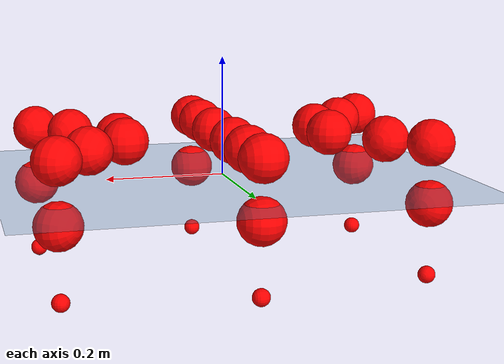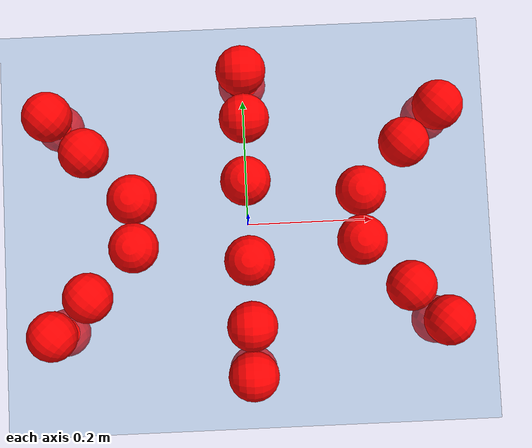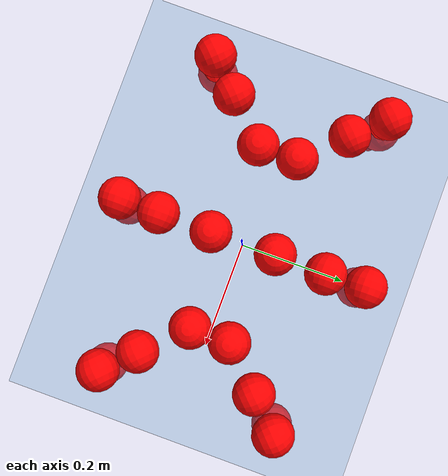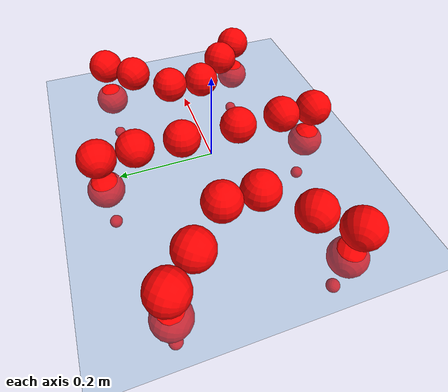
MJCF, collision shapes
<mujoco model="Golem">
  <compiler angle="radian" assetdir="assets" balanceinertia="true" inertiafromgeom="false"/>

  <option timestep="0.005" density="1.2" viscosity="2e-05"/>

  <size nkey="1"/>

  <visual>
    <quality shadowsize="8192"/>
    <map shadowclip="0.5"/>
  </visual>

  <default>
    <default class="/">
      <joint armature="0.01" damping="0.01" frictionloss="0.01"/>
      <geom contype="0" conaffinity="0" group="1" solref="-1000 -80"/>
      <site size="0.01 0.005 0.005" group="5"/>
      <general forcelimited="true" biastype="affine" gainprm="25" biasprm="0 -25 -0.5"/>
      <default class="visual">
        <geom type="mesh" group="2"/>
      </default>
      <default class="collision">
        <geom group="3"/>
      </default>
      <default class="foot">
        <geom size="0.01 0 0" condim="6" group="4" priority="1" solimp="0.015 1 0.01"/>
      </default>
      <default class="reward_collision_sphere">
        <geom group="5" rgba="1 0 0 1"/>
      </default>
    </default>
  </default>

  <asset>
    <texture type="skybox" colorspace="auto" name="//unnamed_texture_0" builtin="gradient" rgb1="0.95 0.95 0.95" rgb2="0.95 0.95 0.95" width="100" height="600"/>
    <texture type="2d" colorspace="auto" name="texplane" builtin="checker" rgb1="0.345 0.575 0.748" rgb2="0.345 0.575 0.748" markrgb="1 1 1" width="512" height="512"/>
    <material name="MatPlane" class="/" texture="texplane" texuniform="true" texrepeat="2 2" specular="0.9"/>
    <mesh name="body" class="/" file="body.stl" scale="0.001 0.001 0.001"/>
    <mesh name="coxa" class="/" file="coxa.stl" scale="0.001 0.001 0.001"/>
    <mesh name="femur" class="/" file="femur.stl" scale="0.001 0.001 0.001"/>
    <mesh name="tibia" class="/" file="tibia.stl" scale="0.001 0.001 0.001"/>
    <mesh name="tarsus" class="/" file="tarsus.stl" scale="0.001 0.001 0.001"/>
  </asset>

  <worldbody>
    <geom name="floor" class="/" size="100 100 0.125" type="plane" group="0" material="MatPlane"/>
    <light name="toplight_shadow" class="/" pos="0 0 5" dir="0.0990148 0.0990148 -0.990148" type="directional" ambient="0.04 0.04 0.04" diffuse="0.55 0.55 0.55" specular="0.12 0.12 0.12"/>
    <light name="toplight_fill" class="/" pos="0 0 5" dir="0.0990148 0.0990148 -0.990148" type="directional" castshadow="false" ambient="0.04 0.04 0.04" diffuse="0.3 0.3 0.3" specular="0.08 0.08 0.08"/>
    <body name="trunk" pos="-0.000597659 0.00238137 0.000718632" quat="1 0.000132963 -3.11671e-05 8.80261e-05">
      <inertial pos="0.000560973 0.000247863 -0.00528692" quat="0.999999 0.000255351 -0.00124205 -0.00036143" mass="3.55502" diaginertia="0.0180347 0.00207399 0.0135878"/>
      <joint name="//unnamed_joint_0" type="free"/>
      <geom name="//unnamed_geom_1" class="/" pos="0 0 0.0681376" quat="1 0 0 0" type="mesh" rgba="0.9 0.9 0.9 1" mesh="body"/>
      <site name="imu" class="/" pos="0.146625 -0.00528864 0.10689" size="0.00970498"/>
      <camera name="track" class="/" pos="0 -1.4506 0" quat="0.707107 0.707107 0 0" mode="trackcom"/>
      <camera name="ego_camera" class="/" pos="0.1458 0 0.106465" quat="-0.5 -0.5 0.5 0.5"/>
      <body name="coxa_RR" pos="-0.199515 -0.0588959 0.0710991" quat="0.382777 -0.000764222 0.000653011 -0.92384">
        <inertial pos="0.000289413 -0.00256482 0.00304926" quat="0.999999 0.00105772 -0.000473755 0.000298429" mass="0.18669" diaginertia="0.017699 0.00201773 0.0136414"/>
        <joint name="coxa_joint_RR" class="/" pos="0 0 0" axis="0.00485425 0.000278726 -0.999988" range="-3.10461 3.14105" armature="0.00985603" damping="0.0112296" frictionloss="0.00996763"/>
        <geom name="//unnamed_geom_2" class="/" type="mesh" rgba="0.2 0.2 0.2 1" mesh="coxa"/>
        <geom name="//unnamed_geom_3" class="reward_collision_sphere" size="0.0388199" pos="-0.0336462 0 0"/>
        <body name="femur_RR" pos="0.0692639 0.000553759 -0.00090114" quat="0.500771 -0.499924 0.499824 0.499481">
          <inertial pos="-0.00192566 -2.42899e-05 0.000981804" quat="1 -0.00042944 -0.000205505 -7.93845e-06" mass="0.18517" diaginertia="0.0180016 0.00204995 0.0139336"/>
          <joint name="femur_joint_RR" class="/" pos="0 0 0" axis="-0.00248235 0.00103278 -0.999996" stiffness="0.000595562" range="-3.16206 3.15075" armature="0.00901734" damping="0.00489556" frictionloss="0.00972337"/>
          <geom name="//unnamed_geom_4" class="/" type="mesh" rgba="0.9 0.9 0.9 1" mesh="femur"/>
          <geom name="//unnamed_geom_5" class="reward_collision_sphere" size="0.0388199"/>
          <body name="tibia_RR" pos="0.00124239 -0.0789387 0.000148878" quat="-5.39105e-05 1 0.000104512 0.000105617">
            <inertial pos="-0.000116727 0.000528697 -0.00105805" quat="0.999998 0.00116419 -0.000570219 0.00174415" mass="0.179467" diaginertia="0.0177388 0.00205995 0.0141754"/>
            <joint name="tibia_joint_RR" class="/" pos="0 0 0" axis="0.00657685 -0.0037026 0.999972" range="-3.13897 3.08714" armature="0.0101456" damping="0.0146353" frictionloss="0.00940066"/>
            <geom name="//unnamed_geom_6" class="/" type="mesh" rgba="0.2 0.2 0.2 1" mesh="tibia"/>
            <geom name="//unnamed_geom_7" class="reward_collision_sphere" size="0.0388199"/>
            <body name="tarsus_RR" pos="0.0985819 -0.00183221 -0.00103811" quat="1 -9.54229e-05 -1.95974e-05 -2.62497e-05">
              <inertial pos="0.070529 0.00314486 -0.0021414" quat="0.499987 0.500032 0.499988 0.499993" mass="0.189825" diaginertia="0.0181175 0.00212059 0.0141387"/>
              <joint name="tarsus_joint_RR" class="/" pos="0 0 0" axis="-0.0022825 -0.000352986 0.999997" range="-3.087 3.12897" armature="0.00933037" damping="0.0419698" frictionloss="0.0098178"/>
              <geom name="//unnamed_geom_8" class="/" type="mesh" rgba="0.9 0.9 0.9 1" mesh="tarsus"/>
              <geom name="foot_1" class="foot" size="0.00944737" pos="0.125613 0 0" quat="0 -0.707107 0 0.707107"/>
              <geom name="//unnamed_geom_10" class="reward_collision_sphere" size="0.0388199"/>
              <geom name="//unnamed_geom_11" class="reward_collision_sphere" size="0.0145575" pos="0.120566 0 0"/>
              <site name="foot_1" class="foot" pos="0.125613 0 0" quat="0 -0.707107 0 0.707107" size="0.00970498"/>
            </body>
          </body>
        </body>
      </body>
      <body name="coxa_RM" pos="0.000208735 -0.0956483 0.0667435" quat="0.707144 -9.13235e-05 -0.000170783 -0.707069">
        <inertial pos="0.000527827 0.000116358 -0.000682712" quat="0.999997 -0.000712085 -0.00196434 0.0015334" mass="0.177932" diaginertia="0.0175286 0.00196717 0.0135138"/>
        <joint name="coxa_joint_RM" class="/" pos="0 0 0" axis="-0.00279161 -0.000628948 -0.999996" range="-3.11944 3.15841" armature="0.00982539" damping="0.00648242" frictionloss="0.0084388"/>
        <geom name="//unnamed_geom_12" class="/" type="mesh" rgba="0.2 0.2 0.2 1" mesh="coxa"/>
        <geom name="//unnamed_geom_13" class="reward_collision_sphere" size="0.0388199" pos="-0.0336462 0 0"/>
        <body name="femur_RM" pos="0.0666057 8.05636e-05 0.00157812" quat="0.499817 -0.49973 0.500204 0.500248">
          <inertial pos="0.000281046 -0.000872895 0.00170257" quat="0.999986 -0.00416469 -0.00098353 0.00302096" mass="0.18228" diaginertia="0.0172206 0.00203007 0.013743"/>
          <joint name="femur_joint_RM" class="/" pos="0 0 0" axis="-0.00484891 -0.00336724 -0.999983" stiffness="5.91044e-05" range="-3.1602 3.13362" armature="0.00974862" damping="0" frictionloss="0.00943846"/>
          <geom name="//unnamed_geom_14" class="/" type="mesh" rgba="0.9 0.9 0.9 1" mesh="femur"/>
          <geom name="//unnamed_geom_15" class="reward_collision_sphere" size="0.0388199"/>
          <body name="tibia_RM" pos="0.00213146 -0.0753354 -0.0010517" quat="-0.00010955 1 9.99612e-05 -1.88812e-06">
            <inertial pos="-0.00261381 -0.00272006 -0.000776375" quat="0.999916 0.00845273 0.0020644 -0.00959394" mass="0.183068" diaginertia="0.017644 0.00200827 0.0132536"/>
            <joint name="tibia_joint_RM" class="/" pos="0 0 0" axis="-0.000334578 0.000492902 1" range="-3.12838 3.13871" armature="0.00978937" damping="0.0206353" frictionloss="0.0100069"/>
            <geom name="//unnamed_geom_16" class="/" type="mesh" rgba="0.2 0.2 0.2 1" mesh="tibia"/>
            <geom name="//unnamed_geom_17" class="reward_collision_sphere" size="0.0388199"/>
            <body name="tarsus_RM" pos="0.0971847 -0.000816289 -0.000510538" quat="1 2.39074e-05 0.000318335 -0.000294162">
              <inertial pos="0.0668792 0.00038133 0.000955946" quat="0.499978 0.500048 0.500082 0.499892" mass="0.185515" diaginertia="0.0178767 0.00205472 0.0138426"/>
              <joint name="tarsus_joint_RM" class="/" pos="0 0 0" axis="-0.00302882 0.00184379 0.999994" range="-3.13782 3.12639" armature="0.00842329" damping="0.000620487" frictionloss="0.00962698"/>
              <geom name="//unnamed_geom_18" class="/" type="mesh" rgba="0.9 0.9 0.9 1" mesh="tarsus"/>
              <geom name="foot_2" class="foot" size="0.00916337" pos="0.125613 0 0" quat="0 -0.707107 0 0.707107"/>
              <geom name="//unnamed_geom_20" class="reward_collision_sphere" size="0.0388199"/>
              <geom name="//unnamed_geom_21" class="reward_collision_sphere" size="0.0145575" pos="0.120566 0 0"/>
              <site name="foot_2" class="foot" pos="0.125613 0 0" quat="0 -0.707107 0 0.707107" size="0.00970498"/>
            </body>
          </body>
        </body>
      </body>
      <body name="coxa_RF" pos="0.198009 -0.0614723 0.067254" quat="0.923985 -0.000366079 0.000247292 -0.382428">
        <inertial pos="0.00238802 8.72312e-05 0.000405307" quat="0.999998 0.000596227 0.000639624 -0.00176342" mass="0.182209" diaginertia="0.0182529 0.00197697 0.0132432"/>
        <joint name="coxa_joint_RF" class="/" pos="0 0 0" axis="-0.00285461 -0.00395897 -0.999988" range="-3.15527 3.14234" armature="0.00967505" damping="0.00949823" frictionloss="0.00963607"/>
        <geom name="//unnamed_geom_22" class="/" type="mesh" rgba="0.2 0.2 0.2 1" mesh="coxa"/>
        <geom name="//unnamed_geom_23" class="reward_collision_sphere" size="0.0388199" pos="-0.0336462 0 0"/>
        <body name="femur_RF" pos="0.0685279 -0.00141288 -0.000671312" quat="0.500052 -0.499978 0.499994 0.499976">
          <inertial pos="-0.000241377 0.000751393 -0.00168667" quat="0.999987 -0.000523666 -0.000299752 0.005077" mass="0.180491" diaginertia="0.0178873 0.00208159 0.0135717"/>
          <joint name="femur_joint_RF" class="/" pos="0 0 0" axis="-0.000972391 -0.00129105 -0.999999" range="-3.09516 3.14306" armature="0.010346" damping="0" frictionloss="0.0093573"/>
          <geom name="//unnamed_geom_24" class="/" type="mesh" rgba="0.9 0.9 0.9 1" mesh="femur"/>
          <geom name="//unnamed_geom_25" class="reward_collision_sphere" size="0.0388199"/>
          <body name="tibia_RF" pos="0.0005356 -0.0775505 -0.000271951" quat="0.000128519 1 -1.02672e-05 -6.62039e-05">
            <inertial pos="-0.000849796 0.00140613 0.000723101" quat="0.999987 0.00432127 -0.00107673 -0.00241556" mass="0.181894" diaginertia="0.0182472 0.00198298 0.013934"/>
            <joint name="tibia_joint_RF" class="/" pos="0 0 0" axis="-0.00282849 0.00126616 0.999995" range="-3.13896 3.15828" armature="0.00954739" damping="0.00901585" frictionloss="0.00877322"/>
            <geom name="//unnamed_geom_26" class="/" type="mesh" rgba="0.2 0.2 0.2 1" mesh="tibia"/>
            <geom name="//unnamed_geom_27" class="reward_collision_sphere" size="0.0388199"/>
            <body name="tarsus_RF" pos="0.0980581 0.00168954 0.0016941" quat="0.999999 -0.000398063 -0.00121599 0.000148068">
              <inertial pos="0.0661444 -0.00248534 0.0010154" quat="0.495308 0.492337 0.508844 0.503341" mass="0.17746" diaginertia="0.0181778 0.00193024 0.0136265"/>
              <joint name="tarsus_joint_RF" class="/" pos="0 0 0" axis="0.0034977 0.0084485 0.999958" range="-3.08951 3.13895" armature="0.0108993" damping="0.00302021" frictionloss="0.00970825"/>
              <geom name="//unnamed_geom_28" class="/" type="mesh" rgba="0.9 0.9 0.9 1" mesh="tarsus"/>
              <geom name="foot_3" class="foot" size="0.0101065" pos="0.125613 0 0" quat="0 -0.707107 0 0.707107"/>
              <geom name="//unnamed_geom_30" class="reward_collision_sphere" size="0.0388199"/>
              <geom name="//unnamed_geom_31" class="reward_collision_sphere" size="0.0145575" pos="0.120566 0 0"/>
              <site name="foot_3" class="foot" pos="0.125613 0 0" quat="0 -0.707107 0 0.707107" size="0.00970498"/>
            </body>
          </body>
        </body>
      </body>
      <body name="coxa_LR" pos="-0.199933 0.0629752 0.070341" quat="0.382932 -0.00020434 -0.000211036 0.923776">
        <inertial pos="0.00115897 -0.00287001 -0.000408129" quat="0.999956 0.00171216 0.00359088 -0.00852589" mass="0.175812" diaginertia="0.017039 0.00200331 0.0133142"/>
        <joint name="coxa_joint_LR" class="/" pos="0 0 0" axis="0.0026639 -0.00329143 -0.999991" range="-3.13483 3.18916" armature="0.00852516" damping="0.00876352" frictionloss="0.0100022"/>
        <geom name="//unnamed_geom_32" class="/" type="mesh" rgba="0.2 0.2 0.2 1" mesh="coxa"/>
        <geom name="//unnamed_geom_33" class="reward_collision_sphere" size="0.0388199" pos="-0.0336462 0 0"/>
        <body name="femur_LR" pos="0.0703668 -0.0021801 -0.00218353" quat="0.49988 -0.499554 0.500593 0.499972">
          <inertial pos="-0.00087287 -0.000611327 -0.00125736" quat="0.99992 0.00126742 -0.00444483 0.011769" mass="0.182756" diaginertia="0.0179951 0.00202082 0.0142399"/>
          <joint name="femur_joint_LR" class="/" pos="0 0 0" axis="6.82555e-05 -0.00196449 0.999998" range="-3.0875 3.1011" armature="0.00998051" damping="0" frictionloss="0.00980073"/>
          <geom name="//unnamed_geom_34" class="/" type="mesh" rgba="0.9 0.9 0.9 1" mesh="femur"/>
          <geom name="//unnamed_geom_35" class="reward_collision_sphere" size="0.0388199"/>
          <body name="tibia_LR" pos="-0.000958321 -0.0800712 -0.00280917" quat="2.00258e-05 1 -0.000106307 8.38032e-05">
            <inertial pos="6.93907e-05 -0.00228493 0.00177553" quat="0.999994 -9.23224e-05 -0.00331089 -0.000868514" mass="0.183519" diaginertia="0.0180963 0.00201319 0.0137522"/>
            <joint name="tibia_joint_LR" class="/" pos="0 0 0" axis="8.81268e-05 -0.000136235 -1" range="-3.17819 3.14886" armature="0.00942395" damping="0" frictionloss="0.0101279"/>
            <geom name="//unnamed_geom_36" class="/" type="mesh" rgba="0.2 0.2 0.2 1" mesh="tibia"/>
            <geom name="//unnamed_geom_37" class="reward_collision_sphere" size="0.0388199"/>
            <body name="tarsus_LR" pos="0.100874 0.000408506 0.000149385" quat="0.999999 0.000520688 -0.000746196 0.000591163">
              <inertial pos="0.0701731 0.000558532 -0.000190702" quat="0.49688 0.501378 0.498211 0.503503" mass="0.185414" diaginertia="0.0176126 0.00200231 0.0135521"/>
              <joint name="tarsus_joint_LR" class="/" pos="0 0 0" axis="0.000974725 -0.00148292 -0.999998" range="-3.18417 3.14004" armature="0.0096972" damping="0.0278147" frictionloss="0.00855907"/>
              <geom name="//unnamed_geom_38" class="/" type="mesh" rgba="0.9 0.9 0.9 1" mesh="tarsus"/>
              <geom name="foot_4" class="foot" size="0.00949467" pos="0.125613 0 0" quat="0.707107 0 -0.707107 0"/>
              <geom name="//unnamed_geom_40" class="reward_collision_sphere" size="0.0388199"/>
              <geom name="//unnamed_geom_41" class="reward_collision_sphere" size="0.0145575" pos="0.120566 0 0"/>
              <site name="foot_4" class="foot" pos="0.125613 0 0" quat="0.707107 0 -0.707107 0" size="0.00970498"/>
            </body>
          </body>
        </body>
      </body>
      <body name="coxa_LM" pos="-0.000712799 0.0942737 0.0679076" quat="0.7071 5.00637e-05 5.17239e-05 0.707114">
        <inertial pos="-0.00164971 0.000927863 -0.000982811" quat="0.999999 0.00117295 0.000213314 0.000169344" mass="0.182617" diaginertia="0.0172853 0.00194426 0.014102"/>
        <joint name="coxa_joint_LM" class="/" pos="0 0 0" axis="0.00377331 -0.00295971 -0.999989" stiffness="0.00104874" range="-3.13889 3.13716" armature="0.0109364" damping="0.00127191" frictionloss="0.00920676"/>
        <geom name="//unnamed_geom_42" class="/" type="mesh" rgba="0.2 0.2 0.2 1" mesh="coxa"/>
        <geom name="//unnamed_geom_43" class="reward_collision_sphere" size="0.0388199" pos="-0.0336462 0 0"/>
        <body name="femur_LM" pos="0.0626373 -0.00192354 0.0020152" quat="0.499962 -0.499957 0.500193 0.499888">
          <inertial pos="0.0019199 -0.00013973 0.00229448" quat="1 -0.000558722 6.74306e-05 -0.000497815" mass="0.182418" diaginertia="0.0176914 0.0020081 0.0137611"/>
          <joint name="femur_joint_LM" class="/" pos="0 0 0" axis="-0.00639561 -0.000183164 0.99998" range="-3.14509 3.10369" armature="0.00959338" damping="0.00207769" frictionloss="0.0102862"/>
          <geom name="//unnamed_geom_44" class="/" type="mesh" rgba="0.9 0.9 0.9 1" mesh="femur"/>
          <geom name="//unnamed_geom_45" class="reward_collision_sphere" size="0.0388199"/>
          <body name="tibia_LM" pos="0.00119058 -0.075365 0.00214113" quat="3.0758e-05 1 -0.000101047 -0.000127246">
            <inertial pos="-0.00049727 -0.00271806 0.00266216" quat="0.999915 0.00901446 0.00700309 0.00631211" mass="0.177866" diaginertia="0.0178505 0.00196944 0.0133764"/>
            <joint name="tibia_joint_LM" class="/" pos="0 0 0" axis="0.00561741 0.00567061 -0.999968" range="-3.14443 3.09133" armature="0.00933509" damping="0.00118817" frictionloss="0.00984333"/>
            <geom name="//unnamed_geom_46" class="/" type="mesh" rgba="0.2 0.2 0.2 1" mesh="tibia"/>
            <geom name="//unnamed_geom_47" class="reward_collision_sphere" size="0.0388199"/>
            <body name="tarsus_LM" pos="0.0974877 -0.00105956 0.00162649" quat="1 -0.000355754 -9.54889e-05 -0.000193039">
              <inertial pos="0.0669033 0.000415088 -0.00212589" quat="0.510834 0.497832 0.496799 0.494372" mass="0.188444" diaginertia="0.0179235 0.00196768 0.0135099"/>
              <joint name="tarsus_joint_LM" class="/" pos="0 0 0" axis="0.00711666 -0.00707059 -0.99995" range="-3.14771 3.09247" armature="0.00992555" damping="0" frictionloss="0.00969013"/>
              <geom name="//unnamed_geom_48" class="/" type="mesh" rgba="0.9 0.9 0.9 1" mesh="tarsus"/>
              <geom name="foot_5" class="foot" size="0.00972245" pos="0.125613 0 0" quat="0.707107 0 -0.707107 0"/>
              <geom name="//unnamed_geom_50" class="reward_collision_sphere" size="0.0388199"/>
              <geom name="//unnamed_geom_51" class="reward_collision_sphere" size="0.0145575" pos="0.120566 0 0"/>
              <site name="foot_5" class="foot" pos="0.125613 0 0" quat="0.707107 0 -0.707107 0" size="0.00970498"/>
            </body>
          </body>
        </body>
      </body>
      <body name="coxa_LF" pos="0.198861 0.0614131 0.06996" quat="0.923656 -8.02802e-05 0.00103398 0.383221">
        <inertial pos="-0.000839944 0.00113662 -0.000433942" quat="0.999915 -0.00913094 -0.00589275 0.0072095" mass="0.187157" diaginertia="0.0176281 0.002053 0.0131297"/>
        <joint name="coxa_joint_LF" class="/" pos="0 0 0" axis="0.000778499 0.000638513 -0.999999" range="-3.13816 3.13997" armature="0.00985327" damping="0.00353255" frictionloss="0.00932008"/>
        <geom name="//unnamed_geom_52" class="/" type="mesh" rgba="0.2 0.2 0.2 1" mesh="coxa"/>
        <geom name="//unnamed_geom_53" class="reward_collision_sphere" size="0.0388199" pos="-0.0336462 0 0"/>
        <body name="femur_LF" pos="0.0664478 0.00101798 0.000310892" quat="0.499965 -0.500022 0.500011 0.500002">
          <inertial pos="0.00234225 0.000660163 0.00248885" quat="0.999992 0.00217445 -0.0026129 0.00227206" mass="0.179704" diaginertia="0.017127 0.00200278 0.0131335"/>
          <joint name="femur_joint_LF" class="/" pos="0 0 0" axis="0.000492904 0.00117843 0.999999" range="-3.13292 3.19094" armature="0.0104179" damping="0" frictionloss="0.00997221"/>
          <geom name="//unnamed_geom_54" class="/" type="mesh" rgba="0.9 0.9 0.9 1" mesh="femur"/>
          <geom name="//unnamed_geom_55" class="reward_collision_sphere" size="0.0388199"/>
          <body name="tibia_LF" pos="0.00285057 -0.079412 9.57807e-05" quat="0.000431632 1 -0.000376554 0.000223497">
            <inertial pos="0.000532079 -0.000941986 -6.93008e-05" quat="1 -0.000668437 0.000300385 0.00059381" mass="0.183027" diaginertia="0.0176184 0.00201967 0.0137081"/>
            <joint name="tibia_joint_LF" class="/" pos="0 0 0" axis="0.00543228 0.00512046 -0.999972" range="-3.12666 3.1646" armature="0.00851278" damping="0.000938716" frictionloss="0.0092346"/>
            <geom name="//unnamed_geom_56" class="/" type="mesh" rgba="0.2 0.2 0.2 1" mesh="tibia"/>
            <geom name="//unnamed_geom_57" class="reward_collision_sphere" size="0.0388199"/>
            <body name="tarsus_LF" pos="0.100117 0.000910644 -0.000760624" quat="1 -0.000142127 -2.80961e-05 0.000154837">
              <inertial pos="0.065913 -0.000389382 0.000269726" quat="0.499741 0.500278 0.500399 0.499582" mass="0.180228" diaginertia="0.0179037 0.00201424 0.0137886"/>
              <joint name="tarsus_joint_LF" class="/" pos="0 0 0" axis="-0.000576282 0.00132874 -0.999999" stiffness="0.0195217" range="-3.18751 3.18834" armature="0.0097004" damping="0" frictionloss="0.00946354"/>
              <geom name="//unnamed_geom_58" class="/" type="mesh" rgba="0.9 0.9 0.9 1" mesh="tarsus"/>
              <geom name="foot_6" class="foot" size="0.00957948" pos="0.125613 0 0" quat="0.707107 0 -0.707107 0"/>
              <geom name="//unnamed_geom_60" class="reward_collision_sphere" size="0.0388199"/>
              <geom name="//unnamed_geom_61" class="reward_collision_sphere" size="0.0145575" pos="0.120566 0 0"/>
              <site name="foot_6" class="foot" pos="0.125613 0 0" quat="0.707107 0 -0.707107 0" size="0.00970498"/>
            </body>
          </body>
        </body>
      </body>
    </body>
  </worldbody>

  <contact>
    <pair class="/" geom1="floor" geom2="foot_1" name="//unnamed_contact_0"/>
    <pair class="/" geom1="floor" geom2="foot_2" name="//unnamed_contact_1"/>
    <pair class="/" geom1="floor" geom2="foot_3" name="//unnamed_contact_2"/>
    <pair class="/" geom1="floor" geom2="foot_4" name="//unnamed_contact_3"/>
    <pair class="/" geom1="floor" geom2="foot_5" name="//unnamed_contact_4"/>
    <pair class="/" geom1="floor" geom2="foot_6" name="//unnamed_contact_5"/>
  </contact>

  <actuator>
    <general name="coxa_joint_RR" class="/" joint="coxa_joint_RR" forcerange="-6.97418 6.97418" gainprm="23.1384" biasprm="0 -23.1384 -0.52031"/>
    <general name="femur_joint_RR" class="/" joint="femur_joint_RR" forcerange="-7.04794 7.04794" gainprm="23.1384" biasprm="0 -23.1384 -0.52031"/>
    <general name="tibia_joint_RR" class="/" joint="tibia_joint_RR" forcerange="-6.40318 6.40318" gainprm="23.1384" biasprm="0 -23.1384 -0.52031"/>
    <general name="tarsus_joint_RR" class="/" joint="tarsus_joint_RR" forcerange="-6.82073 6.82073" gainprm="23.1384" biasprm="0 -23.1384 -0.52031"/>
    <general name="coxa_joint_RM" class="/" joint="coxa_joint_RM" forcerange="-7.11006 7.11006" gainprm="23.1384" biasprm="0 -23.1384 -0.52031"/>
    <general name="femur_joint_RM" class="/" joint="femur_joint_RM" forcerange="-7.23459 7.23459" gainprm="23.1384" biasprm="0 -23.1384 -0.52031"/>
    <general name="tibia_joint_RM" class="/" joint="tibia_joint_RM" forcerange="-6.3924 6.3924" gainprm="23.1384" biasprm="0 -23.1384 -0.52031"/>
    <general name="tarsus_joint_RM" class="/" joint="tarsus_joint_RM" forcerange="-7.35287 7.35287" gainprm="23.1384" biasprm="0 -23.1384 -0.52031"/>
    <general name="coxa_joint_RF" class="/" joint="coxa_joint_RF" forcerange="-6.94729 6.94729" gainprm="23.1384" biasprm="0 -23.1384 -0.52031"/>
    <general name="femur_joint_RF" class="/" joint="femur_joint_RF" forcerange="-7.77858 7.77858" gainprm="23.1384" biasprm="0 -23.1384 -0.52031"/>
    <general name="tibia_joint_RF" class="/" joint="tibia_joint_RF" forcerange="-7.12222 7.12222" gainprm="23.1384" biasprm="0 -23.1384 -0.52031"/>
    <general name="tarsus_joint_RF" class="/" joint="tarsus_joint_RF" forcerange="-7.7771 7.7771" gainprm="23.1384" biasprm="0 -23.1384 -0.52031"/>
    <general name="coxa_joint_LR" class="/" joint="coxa_joint_LR" forcerange="-6.53332 6.53332" gainprm="23.1384" biasprm="0 -23.1384 -0.52031"/>
    <general name="femur_joint_LR" class="/" joint="femur_joint_LR" forcerange="-6.90642 6.90642" gainprm="23.1384" biasprm="0 -23.1384 -0.52031"/>
    <general name="tibia_joint_LR" class="/" joint="tibia_joint_LR" forcerange="-7.26543 7.26543" gainprm="23.1384" biasprm="0 -23.1384 -0.52031"/>
    <general name="tarsus_joint_LR" class="/" joint="tarsus_joint_LR" forcerange="-7.15676 7.15676" gainprm="23.1384" biasprm="0 -23.1384 -0.52031"/>
    <general name="coxa_joint_LM" class="/" joint="coxa_joint_LM" forcerange="-7.07472 7.07472" gainprm="23.1384" biasprm="0 -23.1384 -0.52031"/>
    <general name="femur_joint_LM" class="/" joint="femur_joint_LM" forcerange="-7.03383 7.03383" gainprm="23.1384" biasprm="0 -23.1384 -0.52031"/>
    <general name="tibia_joint_LM" class="/" joint="tibia_joint_LM" forcerange="-6.42407 6.42407" gainprm="23.1384" biasprm="0 -23.1384 -0.52031"/>
    <general name="tarsus_joint_LM" class="/" joint="tarsus_joint_LM" forcerange="-6.71622 6.71622" gainprm="23.1384" biasprm="0 -23.1384 -0.52031"/>
    <general name="coxa_joint_LF" class="/" joint="coxa_joint_LF" forcerange="-6.86902 6.86902" gainprm="23.1384" biasprm="0 -23.1384 -0.52031"/>
    <general name="femur_joint_LF" class="/" joint="femur_joint_LF" forcerange="-6.5014 6.5014" gainprm="23.1384" biasprm="0 -23.1384 -0.52031"/>
    <general name="tibia_joint_LF" class="/" joint="tibia_joint_LF" forcerange="-7.14837 7.14837" gainprm="23.1384" biasprm="0 -23.1384 -0.52031"/>
    <general name="tarsus_joint_LF" class="/" joint="tarsus_joint_LF" forcerange="-7.05811 7.05811" gainprm="23.1384" biasprm="0 -23.1384 -0.52031"/>
  </actuator>

  <sensor>
    <gyro site="imu" name="imu_angular_velocity"/>
    <velocimeter site="imu" name="imu_linear_velocity"/>
    <framelinvel objtype="site" objname="foot_1" name="foot_1_global_linear_velocity"/>
    <framelinvel objtype="site" objname="foot_2" name="foot_2_global_linear_velocity"/>
    <framelinvel objtype="site" objname="foot_3" name="foot_3_global_linear_velocity"/>
    <framelinvel objtype="site" objname="foot_4" name="foot_4_global_linear_velocity"/>
    <framelinvel objtype="site" objname="foot_5" name="foot_5_global_linear_velocity"/>
    <framelinvel objtype="site" objname="foot_6" name="foot_6_global_linear_velocity"/>
  </sensor>

  <keyframe>
    <key name="home" qpos="0 0 0.1457 1 0 0 0 0 0 0 0 0 0 0 0 0 0 0 0 0 0 0 0 0 0 0 0 0 0 0 0"/>
  </keyframe>
</mujoco>
